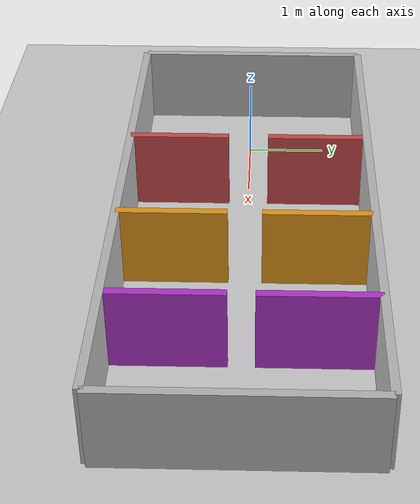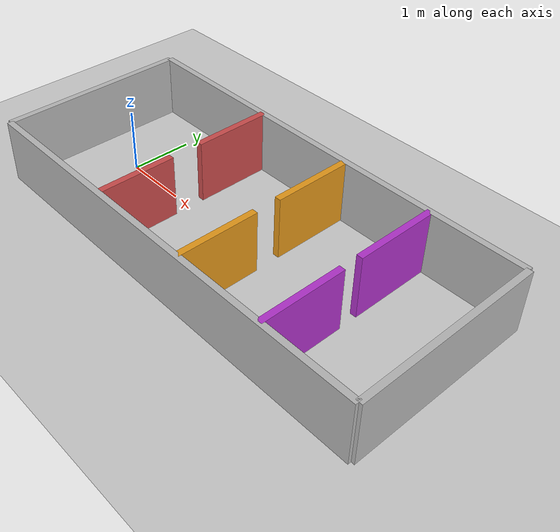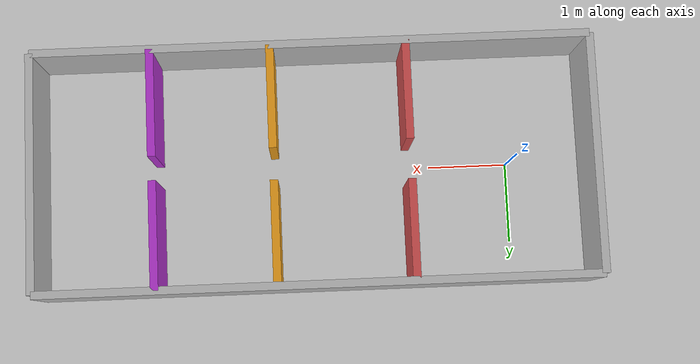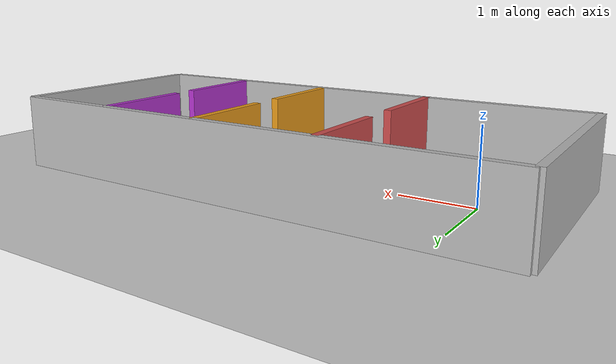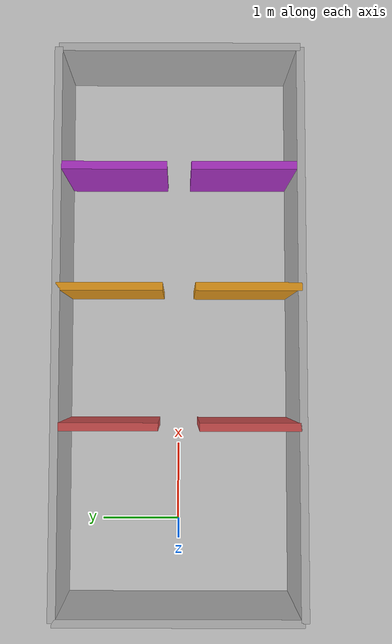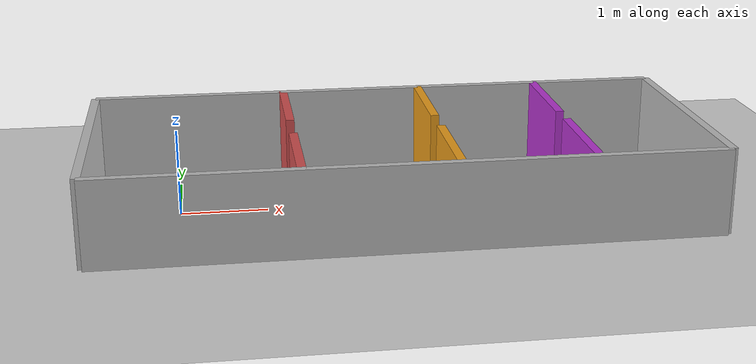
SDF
<?xml version="1.0"?>
<!-- NeuPAN 窄道测试世界：一条走廊，三道逐渐变窄的门（缝宽 0.5 / 0.4 / 0.3 m）。
     机器人实宽 ~0.22 m。起点(0,0)，目标约(5.5,0)。
     配合窄道测试建议 astar robot_radius:=0.1（否则全局规划穿不过窄缝）。 -->
<sdf version="1.6">
    <world name="corridor">

        <plugin filename="gz-sim-physics-system" name="gz::sim::systems::Physics" />
        <plugin filename="gz-sim-user-commands-system" name="gz::sim::systems::UserCommands" />
        <plugin filename="gz-sim-scene-broadcaster-system" name="gz::sim::systems::SceneBroadcaster" />
        <plugin filename="gz-sim-sensors-system" name="gz::sim::systems::Sensors">
            <render_engine>ogre2</render_engine>
        </plugin>
        <plugin filename="gz-sim-imu-system" name="gz::sim::systems::Imu" />

        <light type="directional" name="sun">
            <cast_shadows>true</cast_shadows>
            <pose>0 0 10 0 0 0</pose>
            <diffuse>0.8 0.8 0.8 1</diffuse>
            <specular>0.2 0.2 0.2 1</specular>
            <attenuation>
                <range>1000</range>
                <constant>0.9</constant>
                <linear>0.01</linear>
                <quadratic>0.001</quadratic>
            </attenuation>
            <direction>-0.5 0.1 -0.9</direction>
        </light>

        <model name="ground_plane">
            <static>true</static>
            <link name="link">
                <collision name="collision">
                    <geometry><plane><normal>0 0 1</normal></plane></geometry>
                </collision>
                <visual name="visual">
                    <geometry><plane><normal>0 0 1</normal><size>100 100</size></plane></geometry>
                    <material><ambient>0.8 0.8 0.8 1</ambient><diffuse>0.8 0.8 0.8 1</diffuse></material>
                </visual>
            </link>
        </model>

        <!-- 走廊外墙：x 从 -1 到 6，y 两侧 ±1.5 -->
        <model name="wall_top"><static>true</static><pose>2.5 1.5 0.5 0 0 0</pose>
            <link name="link">
                <collision name="c"><geometry><box><size>7 0.1 1</size></box></geometry></collision>
                <visual name="v"><geometry><box><size>7 0.1 1</size></box></geometry></visual>
            </link>
        </model>
        <model name="wall_bottom"><static>true</static><pose>2.5 -1.5 0.5 0 0 0</pose>
            <link name="link">
                <collision name="c"><geometry><box><size>7 0.1 1</size></box></geometry></collision>
                <visual name="v"><geometry><box><size>7 0.1 1</size></box></geometry></visual>
            </link>
        </model>
        <model name="wall_west"><static>true</static><pose>-1 0 0.5 0 0 0</pose>
            <link name="link">
                <collision name="c"><geometry><box><size>0.1 3 1</size></box></geometry></collision>
                <visual name="v"><geometry><box><size>0.1 3 1</size></box></geometry></visual>
            </link>
        </model>
        <model name="wall_east"><static>true</static><pose>6 0 0.5 0 0 0</pose>
            <link name="link">
                <collision name="c"><geometry><box><size>0.1 3 1</size></box></geometry></collision>
                <visual name="v"><geometry><box><size>0.1 3 1</size></box></geometry></visual>
            </link>
        </model>

        <!-- 门1 x=1.3，缝宽 0.5 -->
        <model name="gate1_up"><static>true</static><pose>1.3 0.875 0.5 0 0 0</pose>
            <link name="link">
                <collision name="c"><geometry><box><size>0.1 1.25 1</size></box></geometry></collision>
                <visual name="v"><geometry><box><size>0.1 1.25 1</size></box></geometry>
                    <material><ambient>0.8 0.3 0.3 1</ambient><diffuse>0.8 0.3 0.3 1</diffuse></material></visual>
            </link>
        </model>
        <model name="gate1_dn"><static>true</static><pose>1.3 -0.875 0.5 0 0 0</pose>
            <link name="link">
                <collision name="c"><geometry><box><size>0.1 1.25 1</size></box></geometry></collision>
                <visual name="v"><geometry><box><size>0.1 1.25 1</size></box></geometry>
                    <material><ambient>0.8 0.3 0.3 1</ambient><diffuse>0.8 0.3 0.3 1</diffuse></material></visual>
            </link>
        </model>

        <!-- 门2 x=3.0，缝宽 0.4 -->
        <model name="gate2_up"><static>true</static><pose>3.0 0.85 0.5 0 0 0</pose>
            <link name="link">
                <collision name="c"><geometry><box><size>0.1 1.3 1</size></box></geometry></collision>
                <visual name="v"><geometry><box><size>0.1 1.3 1</size></box></geometry>
                    <material><ambient>0.9 0.6 0.1 1</ambient><diffuse>0.9 0.6 0.1 1</diffuse></material></visual>
            </link>
        </model>
        <model name="gate2_dn"><static>true</static><pose>3.0 -0.85 0.5 0 0 0</pose>
            <link name="link">
                <collision name="c"><geometry><box><size>0.1 1.3 1</size></box></geometry></collision>
                <visual name="v"><geometry><box><size>0.1 1.3 1</size></box></geometry>
                    <material><ambient>0.9 0.6 0.1 1</ambient><diffuse>0.9 0.6 0.1 1</diffuse></material></visual>
            </link>
        </model>

        <!-- 门3 x=4.5，缝宽 0.3（接近机器人极限）-->
        <model name="gate3_up"><static>true</static><pose>4.5 0.825 0.5 0 0 0</pose>
            <link name="link">
                <collision name="c"><geometry><box><size>0.1 1.35 1</size></box></geometry></collision>
                <visual name="v"><geometry><box><size>0.1 1.35 1</size></box></geometry>
                    <material><ambient>0.7 0.2 0.8 1</ambient><diffuse>0.7 0.2 0.8 1</diffuse></material></visual>
            </link>
        </model>
        <model name="gate3_dn"><static>true</static><pose>4.5 -0.825 0.5 0 0 0</pose>
            <link name="link">
                <collision name="c"><geometry><box><size>0.1 1.35 1</size></box></geometry></collision>
                <visual name="v"><geometry><box><size>0.1 1.35 1</size></box></geometry>
                    <material><ambient>0.7 0.2 0.8 1</ambient><diffuse>0.7 0.2 0.8 1</diffuse></material></visual>
            </link>
        </model>

    </world>
</sdf>
